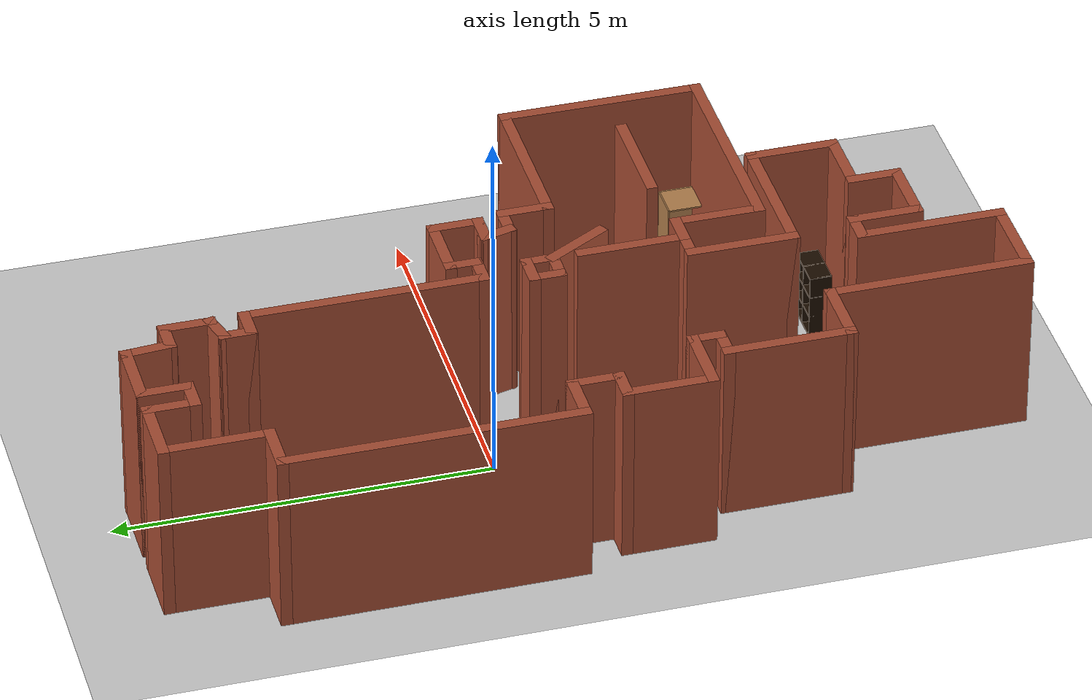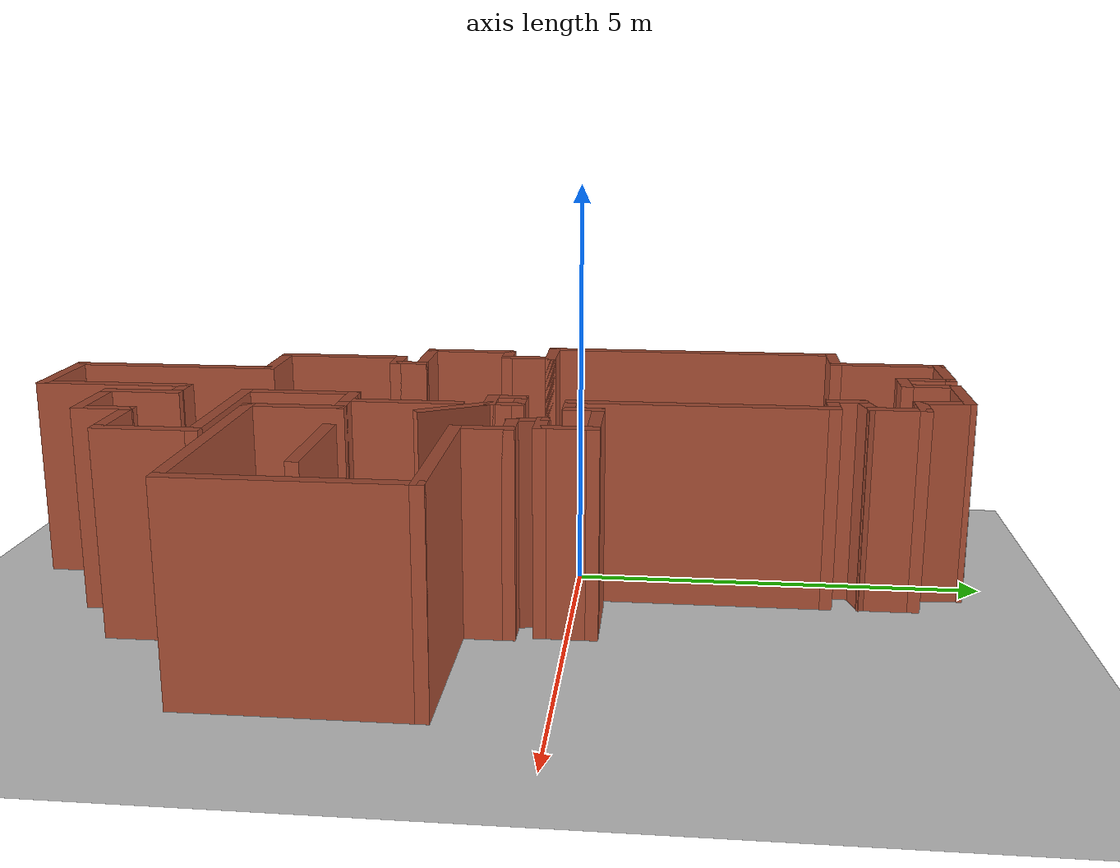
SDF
<sdf version="1.6">
 <world name="default">
  <light name="sun" type="directional">
   <pose>0 0 10 0 -0 0</pose>
   <diffuse>0.8 0.8 0.8 1</diffuse>
   <specular>0.2 0.2 0.2 1</specular>
   <attenuation>
    <range>1000</range>
    <constant>0.9</constant>
    <linear>0.01</linear>
    <quadratic>0.001</quadratic>
   </attenuation>
   <direction>-0.5 0.1 -0.9</direction>
  </light>
  <model name="ground_plane">
   <static>1</static>
   <link name="link">
    <collision name="collision">
     <geometry><plane><normal>0 0 1</normal><size>100 100</size></plane></geometry>
     <surface>
      <contact><collide_bitmask>65535</collide_bitmask></contact>
      <friction><ode><mu>100</mu><mu2>50</mu2></ode></friction>
     </surface>
    </collision>
    <visual name="visual">
     <cast_shadows>0</cast_shadows>
     <geometry><plane><normal>0 0 1</normal><size>100 100</size></plane></geometry>
     <material>
      <script><uri>file://media/materials/scripts/gazebo.material</uri><name>Gazebo/Grey</name></script>
     </material>
    </visual>
   </link>
  </model>
  <gravity>0 0 -9.8</gravity>
  <magnetic_field>6e-06 2.3e-05 -4.2e-05</magnetic_field>
  <atmosphere type="adiabatic"/>
  <physics name="default_physics" default="0" type="ode">
   <max_step_size>0.001</max_step_size>
   <real_time_factor>1</real_time_factor>
   <real_time_update_rate>1000</real_time_update_rate>
  </physics>
  <scene><ambient>0.4 0.4 0.4 1</ambient><background>0.7 0.7 0.7 1</background><shadows>1</shadows></scene>
  <audio><device>default</device></audio>
  <spherical_coordinates>
   <surface_model>EARTH_WGS84</surface_model>
   <latitude_deg>0</latitude_deg>
   <longitude_deg>0</longitude_deg>
   <elevation>0</elevation>
   <heading_deg>0</heading_deg>
  </spherical_coordinates>
  <model name="map_40">
   <pose>0.889419 -1.07501 0 0 -0 0</pose>
   <link name="Wall_0">
    <collision name="Wall_0_Collision">
     <geometry><box><size>1 0.15 2.5</size></box></geometry>
     <pose>0 0 1.25 0 -0 0</pose>
    </collision>
    <visual name="Wall_0_Visual">
     <pose>0 0 1.25 0 -0 0</pose>
     <geometry><box><size>1 0.15 2.5</size></box></geometry>
     <material>
      <script><uri>file://media/materials/scripts/gazebo.material</uri><name>Gazebo/Bricks</name></script>
      <ambient>1 1 1 1</ambient>
     </material>
     <meta><layer>0</layer></meta>
    </visual>
    <pose>-1 5.72202 0 0 -0 3.14159</pose>
   </link>
   <link name="Wall_10">
    <collision name="Wall_10_Collision">
     <geometry><box><size>1 0.15 2.5</size></box></geometry>
     <pose>0 0 1.25 0 -0 0</pose>
    </collision>
    <visual name="Wall_10_Visual">
     <pose>0 0 1.25 0 -0 0</pose>
     <geometry><box><size>1 0.15 2.5</size></box></geometry>
     <material>
      <script><uri>file://media/materials/scripts/gazebo.material</uri><name>Gazebo/Bricks</name></script>
      <ambient>1 1 1 1</ambient>
     </material>
     <meta><layer>0</layer></meta>
    </visual>
    <pose>-2.2 5.72202 0 0 -0 3.14159</pose>
   </link>
   <link name="Wall_11">
    <collision name="Wall_11_Collision">
     <geometry><box><size>1.5 0.15 2.5</size></box></geometry>
     <pose>0 0 1.25 0 -0 0</pose>
    </collision>
    <visual name="Wall_11_Visual">
     <pose>0 0 1.25 0 -0 0</pose>
     <geometry><box><size>1.5 0.15 2.5</size></box></geometry>
     <material>
      <script><uri>file://media/materials/scripts/gazebo.material</uri><name>Gazebo/Bricks</name></script>
      <ambient>1 1 1 1</ambient>
     </material>
     <meta><layer>0</layer></meta>
    </visual>
    <pose>-2.625 5.04702 0 0 -0 -1.5708</pose>
   </link>
   <link name="Wall_12">
    <collision name="Wall_12_Collision">
     <geometry><box><size>0.75 0.15 2.5</size></box></geometry>
     <pose>0 0 1.25 0 -0 0</pose>
    </collision>
    <visual name="Wall_12_Visual">
     <pose>0 0 1.25 0 -0 0</pose>
     <geometry><box><size>0.75 0.15 2.5</size></box></geometry>
     <material>
      <script><uri>file://media/materials/scripts/gazebo.material</uri><name>Gazebo/Bricks</name></script>
      <ambient>1 1 1 1</ambient>
     </material>
     <meta><layer>0</layer></meta>
    </visual>
    <pose>-2.925 4.37202 0 0 -0 3.14159</pose>
   </link>
   <link name="Wall_13">
    <collision name="Wall_13_Collision">
     <geometry><box><size>4 0.15 2.5</size></box></geometry>
     <pose>0 0 1.25 0 -0 0</pose>
    </collision>
    <visual name="Wall_13_Visual">
     <pose>0 0 1.25 0 -0 0</pose>
     <geometry><box><size>4 0.15 2.5</size></box></geometry>
     <material>
      <script><uri>file://media/materials/scripts/gazebo.material</uri><name>Gazebo/Bricks</name></script>
      <ambient>1 1 1 1</ambient>
     </material>
     <meta><layer>0</layer></meta>
    </visual>
    <pose>-3.225 2.44702 0 0 -0 -1.5708</pose>
   </link>
   <link name="Wall_16">
    <collision name="Wall_16_Collision">
     <geometry><box><size>0.75 0.15 2.5</size></box></geometry>
     <pose>0 0 1.25 0 -0 0</pose>
    </collision>
    <visual name="Wall_16_Visual">
     <pose>0 0 1.25 0 -0 0</pose>
     <geometry><box><size>0.75 0.15 2.5</size></box></geometry>
     <material>
      <script><uri>file://media/materials/scripts/gazebo.material</uri><name>Gazebo/Bricks</name></script>
      <ambient>1 1 1 1</ambient>
     </material>
     <meta><layer>0</layer></meta>
    </visual>
    <pose>-2.925 0.522023 0 0 -0 0</pose>
   </link>
   <link name="Wall_17">
    <collision name="Wall_17_Collision">
     <geometry><box><size>0.75 0.15 2.5</size></box></geometry>
     <pose>0 0 1.25 0 -0 0</pose>
    </collision>
    <visual name="Wall_17_Visual">
     <pose>0 0 1.25 0 -0 0</pose>
     <geometry><box><size>0.75 0.15 2.5</size></box></geometry>
     <material>
      <script><uri>file://media/materials/scripts/gazebo.material</uri><name>Gazebo/Bricks</name></script>
      <ambient>1 1 1 1</ambient>
     </material>
     <meta><layer>0</layer></meta>
    </visual>
    <pose>-2.625 0.222023 0 0 -0 -1.5708</pose>
   </link>
   <link name="Wall_18">
    <collision name="Wall_18_Collision">
     <geometry><box><size>0.5 0.15 2.5</size></box></geometry>
     <pose>0 0 1.25 0 -0 0</pose>
    </collision>
    <visual name="Wall_18_Visual">
     <pose>0 0 1.25 0 -0 0</pose>
     <geometry><box><size>0.5 0.15 2.5</size></box></geometry>
     <material>
      <script><uri>file://media/materials/scripts/gazebo.material</uri><name>Gazebo/Bricks</name></script>
      <ambient>1 1 1 1</ambient>
     </material>
     <meta><layer>0</layer></meta>
    </visual>
    <pose>-2.8 -0.077977 0 0 -0 3.14159</pose>
   </link>
   <link name="Wall_19">
    <collision name="Wall_19_Collision">
     <geometry><box><size>1.25 0.15 2.5</size></box></geometry>
     <pose>0 0 1.25 0 -0 0</pose>
    </collision>
    <visual name="Wall_19_Visual">
     <pose>0 0 1.25 0 -0 0</pose>
     <geometry><box><size>1.25 0.15 2.5</size></box></geometry>
     <material>
      <script><uri>file://media/materials/scripts/gazebo.material</uri><name>Gazebo/Bricks</name></script>
      <ambient>1 1 1 1</ambient>
     </material>
     <meta><layer>0</layer></meta>
    </visual>
    <pose>-2.975 -0.627977 0 0 -0 -1.5708</pose>
   </link>
   <link name="Wall_20">
    <collision name="Wall_20_Collision">
     <geometry><box><size>1 0.15 2.5</size></box></geometry>
     <pose>0 0 1.25 0 -0 0</pose>
    </collision>
    <visual name="Wall_20_Visual">
     <pose>0 0 1.25 0 -0 0</pose>
     <geometry><box><size>1 0.15 2.5</size></box></geometry>
     <material>
      <script><uri>file://media/materials/scripts/gazebo.material</uri><name>Gazebo/Bricks</name></script>
      <ambient>1 1 1 1</ambient>
     </material>
     <meta><layer>0</layer></meta>
    </visual>
    <pose>-2.55 -1.17798 0 0 -0 0</pose>
   </link>
   <link name="Wall_21">
    <collision name="Wall_21_Collision">
     <geometry><box><size>0.5 0.15 2.5</size></box></geometry>
     <pose>0 0 1.25 0 -0 0</pose>
    </collision>
    <visual name="Wall_21_Visual">
     <pose>0 0 1.25 0 -0 0</pose>
     <geometry><box><size>0.5 0.15 2.5</size></box></geometry>
     <material>
      <script><uri>file://media/materials/scripts/gazebo.material</uri><name>Gazebo/Bricks</name></script>
      <ambient>1 1 1 1</ambient>
     </material>
     <meta><layer>0</layer></meta>
    </visual>
    <pose>-2.125 -1.35298 0 0 -0 -1.5708</pose>
   </link>
   <link name="Wall_22">
    <collision name="Wall_22_Collision">
     <geometry><box><size>0.5 0.15 2.5</size></box></geometry>
     <pose>0 0 1.25 0 -0 0</pose>
    </collision>
    <visual name="Wall_22_Visual">
     <pose>0 0 1.25 0 -0 0</pose>
     <geometry><box><size>0.5 0.15 2.5</size></box></geometry>
     <material>
      <script><uri>file://media/materials/scripts/gazebo.material</uri><name>Gazebo/Bricks</name></script>
      <ambient>1 1 1 1</ambient>
     </material>
     <meta><layer>0</layer></meta>
    </visual>
    <pose>-2.3 -1.52798 0 0 -0 3.14159</pose>
   </link>
   <link name="Wall_23">
    <collision name="Wall_23_Collision">
     <geometry><box><size>1.75 0.15 2.5</size></box></geometry>
     <pose>0 0 1.25 0 -0 0</pose>
    </collision>
    <visual name="Wall_23_Visual">
     <pose>0 0 1.25 0 -0 0</pose>
     <geometry><box><size>1.75 0.15 2.5</size></box></geometry>
     <material>
      <script><uri>file://media/materials/scripts/gazebo.material</uri><name>Gazebo/Bricks</name></script>
      <ambient>1 1 1 1</ambient>
     </material>
     <meta><layer>0</layer></meta>
    </visual>
    <pose>-2.475 -2.32798 0 0 -0 -1.5708</pose>
   </link>
   <link name="Wall_24">
    <collision name="Wall_24_Collision">
     <geometry><box><size>1 0.15 2.5</size></box></geometry>
     <pose>0 0 1.25 0 -0 0</pose>
    </collision>
    <visual name="Wall_24_Visual">
     <pose>0 0 1.25 0 -0 0</pose>
     <geometry><box><size>1 0.15 2.5</size></box></geometry>
     <material>
      <script><uri>file://media/materials/scripts/gazebo.material</uri><name>Gazebo/Bricks</name></script>
      <ambient>1 1 1 1</ambient>
     </material>
     <meta><layer>0</layer></meta>
    </visual>
    <pose>-2.05 -3.12798 0 0 -0 0</pose>
   </link>
   <link name="Wall_25">
    <collision name="Wall_25_Collision">
     <geometry><box><size>2.75 0.15 2.5</size></box></geometry>
     <pose>0 0 1.25 0 -0 0</pose>
    </collision>
    <visual name="Wall_25_Visual">
     <pose>0 0 1.25 0 -0 0</pose>
     <geometry><box><size>2.75 0.15 2.5</size></box></geometry>
     <material>
      <script><uri>file://media/materials/scripts/gazebo.material</uri><name>Gazebo/Bricks</name></script>
      <ambient>1 1 1 1</ambient>
     </material>
     <meta><layer>0</layer></meta>
    </visual>
    <pose>-1.625 -4.42798 0 0 -0 -1.5708</pose>
   </link>
   <link name="Wall_26">
    <collision name="Wall_26_Collision">
     <geometry><box><size>1.25 0.15 2.5</size></box></geometry>
     <pose>0 0 1.25 0 -0 0</pose>
    </collision>
    <visual name="Wall_26_Visual">
     <pose>0 0 1.25 0 -0 0</pose>
     <geometry><box><size>1.25 0.15 2.5</size></box></geometry>
     <material>
      <script><uri>file://media/materials/scripts/gazebo.material</uri><name>Gazebo/Bricks</name></script>
      <ambient>1 1 1 1</ambient>
     </material>
     <meta><layer>0</layer></meta>
    </visual>
    <pose>-1.075 -5.72798 0 0 -0 0</pose>
   </link>
   <link name="Wall_27">
    <collision name="Wall_27_Collision">
     <geometry><box><size>2 0.15 2.5</size></box></geometry>
     <pose>0 0 1.25 0 -0 0</pose>
    </collision>
    <visual name="Wall_27_Visual">
     <pose>0 0 1.25 0 -0 0</pose>
     <geometry><box><size>2 0.15 2.5</size></box></geometry>
     <material>
      <script><uri>file://media/materials/scripts/gazebo.material</uri><name>Gazebo/Bricks</name></script>
      <ambient>1 1 1 1</ambient>
     </material>
     <meta><layer>0</layer></meta>
    </visual>
    <pose>-0.525 -4.80298 0 0 -0 1.5708</pose>
   </link>
   <link name="Wall_28">
    <collision name="Wall_28_Collision">
     <geometry><box><size>0.5 0.15 2.5</size></box></geometry>
     <pose>0 0 1.25 0 -0 0</pose>
    </collision>
    <visual name="Wall_28_Visual">
     <pose>0 0 1.25 0 -0 0</pose>
     <geometry><box><size>0.5 0.15 2.5</size></box></geometry>
     <material>
      <script><uri>file://media/materials/scripts/gazebo.material</uri><name>Gazebo/Bricks</name></script>
      <ambient>1 1 1 1</ambient>
     </material>
     <meta><layer>0</layer></meta>
    </visual>
    <pose>-0.35 -3.87798 0 0 -0 0</pose>
   </link>
   <link name="Wall_29">
    <collision name="Wall_29_Collision">
     <geometry><box><size>1 0.15 2.5</size></box></geometry>
     <pose>0 0 1.25 0 -0 0</pose>
    </collision>
    <visual name="Wall_29_Visual">
     <pose>0 0 1.25 0 -0 0</pose>
     <geometry><box><size>1 0.15 2.5</size></box></geometry>
     <material>
      <script><uri>file://media/materials/scripts/gazebo.material</uri><name>Gazebo/Bricks</name></script>
      <ambient>1 1 1 1</ambient>
     </material>
     <meta><layer>0</layer></meta>
    </visual>
    <pose>-0.175 -4.30298 0 0 -0 -1.5708</pose>
   </link>
   <link name="Wall_3">
    <collision name="Wall_3_Collision">
     <geometry><box><size>0.75 0.15 2.5</size></box></geometry>
     <pose>0 0 1.25 0 -0 0</pose>
    </collision>
    <visual name="Wall_3_Visual">
     <pose>0 0 1.25 0 -0 0</pose>
     <geometry><box><size>0.75 0.15 2.5</size></box></geometry>
     <material>
      <script><uri>file://media/materials/scripts/gazebo.material</uri><name>Gazebo/Bricks</name></script>
      <ambient>1 1 1 1</ambient>
     </material>
     <meta><layer>0</layer></meta>
    </visual>
    <pose>-1.425 5.42202 0 0 -0 -1.5708</pose>
   </link>
   <link name="Wall_30">
    <collision name="Wall_30_Collision">
     <geometry><box><size>1 0.15 2.5</size></box></geometry>
     <pose>0 0 1.25 0 -0 0</pose>
    </collision>
    <visual name="Wall_30_Visual">
     <pose>0 0 1.25 0 -0 0</pose>
     <geometry><box><size>1 0.15 2.5</size></box></geometry>
     <material>
      <script><uri>file://media/materials/scripts/gazebo.material</uri><name>Gazebo/Bricks</name></script>
      <ambient>1 1 1 1</ambient>
     </material>
     <meta><layer>0</layer></meta>
    </visual>
    <pose>0.25 -4.72798 0 0 -0 0</pose>
   </link>
   <link name="Wall_31">
    <collision name="Wall_31_Collision">
     <geometry><box><size>0.75 0.15 2.5</size></box></geometry>
     <pose>0 0 1.25 0 -0 0</pose>
    </collision>
    <visual name="Wall_31_Visual">
     <pose>0 0 1.25 0 -0 0</pose>
     <geometry><box><size>0.75 0.15 2.5</size></box></geometry>
     <material>
      <script><uri>file://media/materials/scripts/gazebo.material</uri><name>Gazebo/Bricks</name></script>
      <ambient>1 1 1 1</ambient>
     </material>
     <meta><layer>0</layer></meta>
    </visual>
    <pose>0.675 -4.42798 0 0 -0 1.5708</pose>
   </link>
   <link name="Wall_32">
    <collision name="Wall_32_Collision">
     <geometry><box><size>1 0.15 2.5</size></box></geometry>
     <pose>0 0 1.25 0 -0 0</pose>
    </collision>
    <visual name="Wall_32_Visual">
     <pose>0 0 1.25 0 -0 0</pose>
     <geometry><box><size>1 0.15 2.5</size></box></geometry>
     <material>
      <script><uri>file://media/materials/scripts/gazebo.material</uri><name>Gazebo/Bricks</name></script>
      <ambient>1 1 1 1</ambient>
     </material>
     <meta><layer>0</layer></meta>
    </visual>
    <pose>1.1 -4.12798 0 0 -0 0</pose>
   </link>
   <link name="Wall_33">
    <collision name="Wall_33_Collision">
     <geometry><box><size>1.25 0.15 2.5</size></box></geometry>
     <pose>0 0 1.25 0 -0 0</pose>
    </collision>
    <visual name="Wall_33_Visual">
     <pose>0 0 1.25 0 -0 0</pose>
     <geometry><box><size>1.25 0.15 2.5</size></box></geometry>
     <material>
      <script><uri>file://media/materials/scripts/gazebo.material</uri><name>Gazebo/Bricks</name></script>
      <ambient>1 1 1 1</ambient>
     </material>
     <meta><layer>0</layer></meta>
    </visual>
    <pose>1.525 -3.57798 0 0 -0 1.5708</pose>
   </link>
   <link name="Wall_34">
    <collision name="Wall_34_Collision">
     <geometry><box><size>2 0.15 2.5</size></box></geometry>
     <pose>0 0 1.25 0 -0 0</pose>
    </collision>
    <visual name="Wall_34_Visual">
     <pose>0 0 1.25 0 -0 0</pose>
     <geometry><box><size>2 0.15 2.5</size></box></geometry>
     <material>
      <script><uri>file://media/materials/scripts/gazebo.material</uri><name>Gazebo/Bricks</name></script>
      <ambient>1 1 1 1</ambient>
     </material>
     <meta><layer>0</layer></meta>
    </visual>
    <pose>0.6 -3.02798 0 0 -0 3.14159</pose>
   </link>
   <link name="Wall_35">
    <collision name="Wall_35_Collision">
     <geometry><box><size>1.5 0.15 2.5</size></box></geometry>
     <pose>0 0 1.25 0 -0 0</pose>
    </collision>
    <visual name="Wall_35_Visual">
     <pose>0 0 1.25 0 -0 0</pose>
     <geometry><box><size>1.5 0.15 2.5</size></box></geometry>
     <material>
      <script><uri>file://media/materials/scripts/gazebo.material</uri><name>Gazebo/Bricks</name></script>
      <ambient>1 1 1 1</ambient>
     </material>
     <meta><layer>0</layer></meta>
    </visual>
    <pose>-0.325 -2.35298 0 0 -0 1.5708</pose>
   </link>
   <link name="Wall_36">
    <collision name="Wall_36_Collision">
     <geometry><box><size>0.5 0.15 2.5</size></box></geometry>
     <pose>0 0 1.25 0 -0 0</pose>
    </collision>
    <visual name="Wall_36_Visual">
     <pose>0 0 1.25 0 -0 0</pose>
     <geometry><box><size>0.5 0.15 2.5</size></box></geometry>
     <material>
      <script><uri>file://media/materials/scripts/gazebo.material</uri><name>Gazebo/Bricks</name></script>
      <ambient>1 1 1 1</ambient>
     </material>
     <meta><layer>0</layer></meta>
    </visual>
    <pose>-0.15 -1.67798 0 0 -0 0</pose>
   </link>
   <link name="Wall_37">
    <collision name="Wall_37_Collision">
     <geometry><box><size>1.5 0.15 2.5</size></box></geometry>
     <pose>0 0 1.25 0 -0 0</pose>
    </collision>
    <visual name="Wall_37_Visual">
     <pose>0 0 1.25 0 -0 0</pose>
     <geometry><box><size>1.5 0.15 2.5</size></box></geometry>
     <material>
      <script><uri>file://media/materials/scripts/gazebo.material</uri><name>Gazebo/Bricks</name></script>
      <ambient>1 1 1 1</ambient>
     </material>
     <meta><layer>0</layer></meta>
    </visual>
    <pose>0.025 -1.00298 0 0 -0 1.5708</pose>
   </link>
   <link name="Wall_39">
    <collision name="Wall_39_Collision">
     <geometry><box><size>0.5 0.15 2.5</size></box></geometry>
     <pose>0 0 1.25 0 -0 0</pose>
    </collision>
    <visual name="Wall_39_Visual">
     <pose>0 0 1.25 0 -0 0</pose>
     <geometry><box><size>0.5 0.15 2.5</size></box></geometry>
     <material>
      <script><uri>file://media/materials/scripts/gazebo.material</uri><name>Gazebo/Bricks</name></script>
      <ambient>1 1 1 1</ambient>
     </material>
     <meta><layer>0</layer></meta>
    </visual>
    <pose>0.2 -1.67798 0 0 -0 0</pose>
   </link>
   <link name="Wall_4">
    <collision name="Wall_4_Collision">
     <geometry><box><size>0.5 0.15 2.5</size></box></geometry>
     <pose>0 0 1.25 0 -0 0</pose>
    </collision>
    <visual name="Wall_4_Visual">
     <pose>0 0 1.25 0 -0 0</pose>
     <geometry><box><size>0.5 0.15 2.5</size></box></geometry>
     <material>
      <script><uri>file://media/materials/scripts/gazebo.material</uri><name>Gazebo/Bricks</name></script>
      <ambient>1 1 1 1</ambient>
     </material>
     <meta><layer>0</layer></meta>
    </visual>
    <pose>-1.6 5.12202 0 0 -0 3.14159</pose>
   </link>
   <link name="Wall_42">
    <collision name="Wall_42_Collision">
     <geometry><box><size>1.25 0.15 2.5</size></box></geometry>
     <pose>0 0 1.25 0 -0 0</pose>
    </collision>
    <visual name="Wall_42_Visual">
     <pose>0 0 1.25 0 -0 0</pose>
     <geometry><box><size>1.25 0.15 2.5</size></box></geometry>
     <material>
      <script><uri>file://media/materials/scripts/gazebo.material</uri><name>Gazebo/Bricks</name></script>
      <ambient>1 1 1 1</ambient>
     </material>
     <meta><layer>0</layer></meta>
    </visual>
    <pose>0.375 -2.22798 0 0 -0 -1.5708</pose>
   </link>
   <link name="Wall_43">
    <collision name="Wall_43_Collision">
     <geometry><box><size>3 0.15 2.5</size></box></geometry>
     <pose>0 0 1.25 0 -0 0</pose>
    </collision>
    <visual name="Wall_43_Visual">
     <pose>0 0 1.25 0 -0 0</pose>
     <geometry><box><size>3 0.15 2.5</size></box></geometry>
     <material>
      <script><uri>file://media/materials/scripts/gazebo.material</uri><name>Gazebo/Bricks</name></script>
      <ambient>1 1 1 1</ambient>
     </material>
     <meta><layer>0</layer></meta>
    </visual>
    <pose>1.8 -2.77798 0 0 -0 0</pose>
   </link>
   <link name="Wall_44">
    <collision name="Wall_44_Collision">
     <geometry><box><size>2.75 0.15 2.5</size></box></geometry>
     <pose>0 0 1.25 0 -0 0</pose>
    </collision>
    <visual name="Wall_44_Visual">
     <pose>0 0 1.25 0 -0 0</pose>
     <geometry><box><size>2.75 0.15 2.5</size></box></geometry>
     <material>
      <script><uri>file://media/materials/scripts/gazebo.material</uri><name>Gazebo/Bricks</name></script>
      <ambient>1 1 1 1</ambient>
     </material>
     <meta><layer>0</layer></meta>
    </visual>
    <pose>3.225 -1.47798 0 0 -0 1.5708</pose>
   </link>
   <link name="Wall_49">
    <collision name="Wall_49_Collision">
     <geometry><box><size>2.25 0.15 2.5</size></box></geometry>
     <pose>0 0 1.25 0 -0 0</pose>
    </collision>
    <visual name="Wall_49_Visual">
     <pose>0 0 1.25 0 -0 0</pose>
     <geometry><box><size>2.25 0.15 2.5</size></box></geometry>
     <material>
      <script><uri>file://media/materials/scripts/gazebo.material</uri><name>Gazebo/Bricks</name></script>
      <ambient>1 1 1 1</ambient>
     </material>
     <meta><layer>0</layer></meta>
    </visual>
    <pose>2.175 -0.177977 0 0 -0 3.14159</pose>
   </link>
   <link name="Wall_50">
    <collision name="Wall_50_Collision">
     <geometry><box><size>0.75 0.15 2.5</size></box></geometry>
     <pose>0 0 1.25 0 -0 0</pose>
    </collision>
    <visual name="Wall_50_Visual">
     <pose>0 0 1.25 0 -0 0</pose>
     <geometry><box><size>0.75 0.15 2.5</size></box></geometry>
     <material>
      <script><uri>file://media/materials/scripts/gazebo.material</uri><name>Gazebo/Bricks</name></script>
      <ambient>1 1 1 1</ambient>
     </material>
     <meta><layer>0</layer></meta>
    </visual>
    <pose>1.125 0.122023 0 0 -0 1.5708</pose>
   </link>
   <link name="Wall_51">
    <collision name="Wall_51_Collision">
     <geometry><box><size>0.5 0.15 2.5</size></box></geometry>
     <pose>0 0 1.25 0 -0 0</pose>
    </collision>
    <visual name="Wall_51_Visual">
     <pose>0 0 1.25 0 -0 0</pose>
     <geometry><box><size>0.5 0.15 2.5</size></box></geometry>
     <material>
      <script><uri>file://media/materials/scripts/gazebo.material</uri><name>Gazebo/Bricks</name></script>
      <ambient>1 1 1 1</ambient>
     </material>
     <meta><layer>0</layer></meta>
    </visual>
    <pose>0.95 0.422023 0 0 -0 3.14159</pose>
   </link>
   <link name="Wall_52">
    <collision name="Wall_52_Collision">
     <geometry><box><size>0.5 0.15 2.5</size></box></geometry>
     <pose>0 0 1.25 0 -0 0</pose>
    </collision>
    <visual name="Wall_52_Visual">
     <pose>0 0 1.25 0 -0 0</pose>
     <geometry><box><size>0.5 0.15 2.5</size></box></geometry>
     <material>
      <script><uri>file://media/materials/scripts/gazebo.material</uri><name>Gazebo/Bricks</name></script>
      <ambient>1 1 1 1</ambient>
     </material>
     <meta><layer>0</layer></meta>
    </visual>
    <pose>0.729707 0.59106 0 0 -0 1.8326</pose>
   </link>
   <link name="Wall_53">
    <collision name="Wall_53_Collision">
     <geometry><box><size>0.5 0.15 2.5</size></box></geometry>
     <pose>0 0 1.25 0 -0 0</pose>
    </collision>
    <visual name="Wall_53_Visual">
     <pose>0 0 1.25 0 -0 0</pose>
     <geometry><box><size>0.5 0.15 2.5</size></box></geometry>
     <material>
      <script><uri>file://media/materials/scripts/gazebo.material</uri><name>Gazebo/Bricks</name></script>
      <ambient>1 1 1 1</ambient>
     </material>
     <meta><layer>0</layer></meta>
    </visual>
    <pose>0.859413 0.760097 0 0 -0 0</pose>
   </link>
   <link name="Wall_56">
    <collision name="Wall_56_Collision">
     <geometry><box><size>0.75 0.15 2.5</size></box></geometry>
     <pose>0 0 1.25 0 -0 0</pose>
    </collision>
    <visual name="Wall_56_Visual">
     <pose>0 0 1.25 0 -0 0</pose>
     <geometry><box><size>0.75 0.15 2.5</size></box></geometry>
     <material>
      <script><uri>file://media/materials/scripts/gazebo.material</uri><name>Gazebo/Bricks</name></script>
      <ambient>1 1 1 1</ambient>
     </material>
     <meta><layer>0</layer></meta>
    </visual>
    <pose>1.03441 1.0601 0 0 -0 1.5708</pose>
   </link>
   <link name="Wall_57">
    <collision name="Wall_57_Collision">
     <geometry><box><size>1 0.15 2.5</size></box></geometry>
     <pose>0 0 1.25 0 -0 0</pose>
    </collision>
    <visual name="Wall_57_Visual">
     <pose>0 0 1.25 0 -0 0</pose>
     <geometry><box><size>1 0.15 2.5</size></box></geometry>
     <material>
      <script><uri>file://media/materials/scripts/gazebo.material</uri><name>Gazebo/Bricks</name></script>
      <ambient>1 1 1 1</ambient>
     </material>
     <meta><layer>0</layer></meta>
    </visual>
    <pose>0.609413 1.3601 0 0 -0 3.14159</pose>
   </link>
   <link name="Wall_58">
    <collision name="Wall_58_Collision">
     <geometry><box><size>0.5 0.15 2.5</size></box></geometry>
     <pose>0 0 1.25 0 -0 0</pose>
    </collision>
    <visual name="Wall_58_Visual">
     <pose>0 0 1.25 0 -0 0</pose>
     <geometry><box><size>0.5 0.15 2.5</size></box></geometry>
     <material>
      <script><uri>file://media/materials/scripts/gazebo.material</uri><name>Gazebo/Bricks</name></script>
      <ambient>1 1 1 1</ambient>
     </material>
     <meta><layer>0</layer></meta>
    </visual>
    <pose>0.184413 1.1851 0 0 -0 -1.5708</pose>
   </link>
   <link name="Wall_59">
    <collision name="Wall_59_Collision">
     <geometry><box><size>0.5 0.15 2.5</size></box></geometry>
     <pose>0 0 1.25 0 -0 0</pose>
    </collision>
    <visual name="Wall_59_Visual">
     <pose>0 0 1.25 0 -0 0</pose>
     <geometry><box><size>0.5 0.15 2.5</size></box></geometry>
     <material>
      <script><uri>file://media/materials/scripts/gazebo.material</uri><name>Gazebo/Bricks</name></script>
      <ambient>1 1 1 1</ambient>
     </material>
     <meta><layer>0</layer></meta>
    </visual>
    <pose>0.009413 1.0101 0 0 -0 3.14159</pose>
   </link>
   <link name="Wall_60">
    <collision name="Wall_60_Collision">
     <geometry><box><size>3.25 0.15 2.5</size></box></geometry>
     <pose>0 0 1.25 0 -0 0</pose>
    </collision>
    <visual name="Wall_60_Visual">
     <pose>0 0 1.25 0 -0 0</pose>
     <geometry><box><size>3.25 0.15 2.5</size></box></geometry>
     <material>
      <script><uri>file://media/materials/scripts/gazebo.material</uri><name>Gazebo/Bricks</name></script>
      <ambient>1 1 1 1</ambient>
     </material>
     <meta><layer>0</layer></meta>
    </visual>
    <pose>-0.165587 2.5601 0 0 -0 1.5708</pose>
   </link>
   <link name="Wall_61">
    <collision name="Wall_61_Collision">
     <geometry><box><size>0.5 0.15 2.5</size></box></geometry>
     <pose>0 0 1.25 0 -0 0</pose>
    </collision>
    <visual name="Wall_61_Visual">
     <pose>0 0 1.25 0 -0 0</pose>
     <geometry><box><size>0.5 0.15 2.5</size></box></geometry>
     <material>
      <script><uri>file://media/materials/scripts/gazebo.material</uri><name>Gazebo/Bricks</name></script>
      <ambient>1 1 1 1</ambient>
     </material>
     <meta><layer>0</layer></meta>
    </visual>
    <pose>-0.340587 4.1101 0 0 -0 3.14159</pose>
   </link>
   <link name="Wall_62">
    <collision name="Wall_62_Collision">
     <geometry><box><size>0.5 0.15 2.5</size></box></geometry>
     <pose>0 0 1.25 0 -0 0</pose>
    </collision>
    <visual name="Wall_62_Visual">
     <pose>0 0 1.25 0 -0 0</pose>
     <geometry><box><size>0.5 0.15 2.5</size></box></geometry>
     <material>
      <script><uri>file://media/materials/scripts/gazebo.material</uri><name>Gazebo/Bricks</name></script>
      <ambient>1 1 1 1</ambient>
     </material>
     <meta><layer>0</layer></meta>
    </visual>
    <pose>-0.515587 4.2851 0 0 -0 1.5708</pose>
   </link>
   <link name="Wall_63">
    <collision name="Wall_63_Collision">
     <geometry><box><size>0.5 0.15 2.5</size></box></geometry>
     <pose>0 0 1.25 0 -0 0</pose>
    </collision>
    <visual name="Wall_63_Visual">
     <pose>0 0 1.25 0 -0 0</pose>
     <geometry><box><size>0.5 0.15 2.5</size></box></geometry>
     <material>
      <script><uri>file://media/materials/scripts/gazebo.material</uri><name>Gazebo/Bricks</name></script>
      <ambient>1 1 1 1</ambient>
     </material>
     <meta><layer>0</layer></meta>
    </visual>
    <pose>-0.34655 4.50539 0 0 -0 0.261799</pose>
   </link>
   <link name="Wall_64">
    <collision name="Wall_64_Collision">
     <geometry><box><size>0.75 0.15 2.5</size></box></geometry>
     <pose>0 0 1.25 0 -0 0</pose>
    </collision>
    <visual name="Wall_64_Visual">
     <pose>0 0 1.25 0 -0 0</pose>
     <geometry><box><size>0.75 0.15 2.5</size></box></geometry>
     <material>
      <script><uri>file://media/materials/scripts/gazebo.material</uri><name>Gazebo/Bricks</name></script>
      <ambient>1 1 1 1</ambient>
     </material>
     <meta><layer>0</layer></meta>
    </visual>
    <pose>-0.177513 4.85068 0 0 -0 1.5708</pose>
   </link>
   <link name="Wall_65">
    <collision name="Wall_65_Collision">
     <geometry><box><size>0.5 0.15 2.5</size></box></geometry>
     <pose>0 0 1.25 0 -0 0</pose>
    </collision>
    <visual name="Wall_65_Visual">
     <pose>0 0 1.25 0 -0 0</pose>
     <geometry><box><size>0.5 0.15 2.5</size></box></geometry>
     <material>
      <script><uri>file://media/materials/scripts/gazebo.material</uri><name>Gazebo/Bricks</name></script>
      <ambient>1 1 1 1</ambient>
     </material>
     <meta><layer>0</layer></meta>
    </visual>
    <pose>-0.352513 5.15068 0 0 -0 3.14159</pose>
   </link>
   <link name="Wall_66">
    <collision name="Wall_66_Collision">
     <geometry><box><size>0.723309 0.15 2.5</size></box></geometry>
     <pose>0 0 1.25 0 -0 0</pose>
    </collision>
    <visual name="Wall_66_Visual">
     <pose>0 0 1.25 0 -0 0</pose>
     <geometry><box><size>0.723309 0.15 2.5</size></box></geometry>
     <material>
      <script><uri>file://media/materials/scripts/gazebo.material</uri><name>Gazebo/Bricks</name></script>
      <ambient>1 1 1 1</ambient>
     </material>
     <meta><layer>0</layer></meta>
    </visual>
    <pose>-0.551256 5.43635 0 0 -0 1.65372</pose>
   </link>
   <link name="Wall_7">
    <collision name="Wall_7_Collision">
     <geometry><box><size>0.75 0.15 2.5</size></box></geometry>
     <pose>0 0 1.25 0 -0 0</pose>
    </collision>
    <visual name="Wall_7_Visual">
     <pose>0 0 1.25 0 -0 0</pose>
     <geometry><box><size>0.75 0.15 2.5</size></box></geometry>
     <material>
      <script><uri>file://media/materials/scripts/gazebo.material</uri><name>Gazebo/Bricks</name></script>
      <ambient>1 1 1 1</ambient>
     </material>
     <meta><layer>0</layer></meta>
    </visual>
    <pose>-1.775 5.42202 0 0 -0 1.5708</pose>
   </link>
   <link name="Wall_74">
    <collision name="Wall_74_Collision">
     <geometry><box><size>1.5 0.15 2.5</size></box></geometry>
     <pose>0 0 1.25 0 -0 0</pose>
    </collision>
    <visual name="Wall_74_Visual">
     <pose>0 0 1.25 0 -0 0</pose>
     <geometry><box><size>1.5 0.15 2.5</size></box></geometry>
     <material>
      <script><uri>file://media/materials/scripts/gazebo.material</uri><name>Gazebo/Bricks</name></script>
      <ambient>1 1 1 1</ambient>
     </material>
     <meta><layer>0</layer></meta>
    </visual>
    <pose>1.90482 -1.58904 0 0 -0 0</pose>
   </link>
   <link name="Wall_76">
    <collision name="Wall_76_Collision">
     <geometry><box><size>0.5 0.15 2.5</size></box></geometry>
     <pose>0 0 1.25 0 -0 0</pose>
    </collision>
    <visual name="Wall_76_Visual">
     <pose>0 0 1.25 0 -0 0</pose>
     <geometry><box><size>0.5 0.15 2.5</size></box></geometry>
     <material>
      <script><uri>file://media/materials/scripts/gazebo.material</uri><name>Gazebo/Bricks</name></script>
      <ambient>1 1 1 1</ambient>
     </material>
     <meta><layer>0</layer></meta>
    </visual>
    <pose>-0.330278 0.224323 0 0 -0 -1.5708</pose>
   </link>
   <link name="Wall_77">
    <collision name="Wall_77_Collision">
     <geometry><box><size>0.5 0.15 2.5</size></box></geometry>
     <pose>0 0 1.25 0 -0 0</pose>
    </collision>
    <visual name="Wall_77_Visual">
     <pose>0 0 1.25 0 -0 0</pose>
     <geometry><box><size>0.5 0.15 2.5</size></box></geometry>
     <material>
      <script><uri>file://media/materials/scripts/gazebo.material</uri><name>Gazebo/Bricks</name></script>
      <ambient>1 1 1 1</ambient>
     </material>
     <meta><layer>0</layer></meta>
    </visual>
    <pose>-0.155278 0.049323 0 0 -0 0</pose>
   </link>
   <link name="Wall_78">
    <collision name="Wall_78_Collision">
     <geometry><box><size>0.5 0.15 2.5</size></box></geometry>
     <pose>0 0 1.25 0 -0 0</pose>
    </collision>
    <visual name="Wall_78_Visual">
     <pose>0 0 1.25 0 -0 0</pose>
     <geometry><box><size>0.5 0.15 2.5</size></box></geometry>
     <material>
      <script><uri>file://media/materials/scripts/gazebo.material</uri><name>Gazebo/Bricks</name></script>
      <ambient>1 1 1 1</ambient>
     </material>
     <meta><layer>0</layer></meta>
    </visual>
    <pose>0.019722 0.224323 0 0 -0 1.5708</pose>
   </link>
   <link name="Wall_79">
    <collision name="Wall_79_Collision">
     <geometry><box><size>0.5 0.15 2.5</size></box></geometry>
     <pose>0 0 1.25 0 -0 0</pose>
    </collision>
    <visual name="Wall_79_Visual">
     <pose>0 0 1.25 0 -0 0</pose>
     <geometry><box><size>0.5 0.15 2.5</size></box></geometry>
     <material>
      <script><uri>file://media/materials/scripts/gazebo.material</uri><name>Gazebo/Bricks</name></script>
      <ambient>1 1 1 1</ambient>
     </material>
     <meta><layer>0</layer></meta>
    </visual>
    <pose>-0.155278 0.399323 0 0 -0 3.14159</pose>
   </link>
   <link name="Wall_81">
    <collision name="Wall_81_Collision">
     <geometry><box><size>1 0.15 2.5</size></box></geometry>
     <pose>0 0 1.25 0 -0 0</pose>
    </collision>
    <visual name="Wall_81_Visual">
     <pose>0 0 1.25 0 -0 0</pose>
     <geometry><box><size>1 0.15 2.5</size></box></geometry>
     <material>
      <script><uri>file://media/materials/scripts/gazebo.material</uri><name>Gazebo/Bricks</name></script>
      <ambient>1 1 1 1</ambient>
     </material>
     <meta><layer>0</layer></meta>
    </visual>
    <pose>0.232222 -0.318738 0 0 -0 -1.0472</pose>
   </link>
   <static>1</static>
  </model>
  <model name="cabinet">
   <static>1</static>
   <link name="cabinet_bottom_plate">
    <inertial>
     <pose>0 0 -1 0 -0 0</pose>
     <inertia><ixx>2.05</ixx><ixy>0</ixy><ixz>0</ixz><iyy>2.05</iyy><iyz>0</iyz><izz>2.05</izz></inertia>
     <mass>25</mass>
    </inertial>
    <collision name="cabinet_bottom_plate_geom">
     <pose>0 0 0.01 0 -0 0</pose>
     <geometry><box><size>0.45 0.45 0.02</size></box></geometry>
    </collision>
    <visual name="cabinet_bottom_plate_geom_visual">
     <pose>0 0 0.01 0 -0 0</pose>
     <geometry><box><size>0.45 0.45 0.02</size></box></geometry>
     <material>
      <script><uri>file://media/materials/scripts/gazebo.material</uri><name>Gazebo/Wood</name></script>
     </material>
    </visual>
    <collision name="cabinet_bottom_plate_geom_cabinet_back_plate">
     <pose>0.235 0 0.51 0 -0 0</pose>
     <geometry><box><size>0.02 0.45 1.02</size></box></geometry>
    </collision>
    <visual name="cabinet_bottom_plate_geom_cabinet_back_plate_visual">
     <pose>0.235 0 0.51 0 -0 0</pose>
     <geometry><box><size>0.02 0.45 1.02</size></box></geometry>
     <material>
      <script><uri>file://media/materials/scripts/gazebo.material</uri><name>Gazebo/Wood</name></script>
     </material>
    </visual>
    <collision name="cabinet_bottom_plate_geom_cabinet_left_plate">
     <pose>0 0.235 0.51 0 -0 0</pose>
     <geometry><box><size>0.45 0.02 1.02</size></box></geometry>
    </collision>
    <visual name="cabinet_bottom_plate_geom_cabinet_left_plate_visual">
     <pose>0 0.235 0.51 0 -0 0</pose>
     <geometry><box><size>0.45 0.02 1.02</size></box></geometry>
     <material>
      <script><uri>file://media/materials/scripts/gazebo.material</uri><name>Gazebo/Wood</name></script>
     </material>
    </visual>
    <collision name="cabinet_bottom_plate_geom_cabinet_middle_plate">
     <pose>0 0 0.51 0 -0 0</pose>
     <geometry><box><size>0.45 0.45 0.02</size></box></geometry>
    </collision>
    <visual name="cabinet_bottom_plate_geom_cabinet_middle_plate_visual">
     <pose>0 0 0.51 0 -0 0</pose>
     <geometry><box><size>0.45 0.45 0.02</size></box></geometry>
     <material>
      <script><uri>file://media/materials/scripts/gazebo.material</uri><name>Gazebo/Wood</name></script>
     </material>
    </visual>
    <collision name="cabinet_bottom_plate_geom_cabinet_right_plate">
     <pose>0 -0.235 0.51 0 -0 0</pose>
     <geometry><box><size>0.45 0.02 1.02</size></box></geometry>
    </collision>
    <visual name="cabinet_bottom_plate_geom_cabinet_right_plate_visual">
     <pose>0 -0.235 0.51 0 -0 0</pose>
     <geometry><box><size>0.45 0.02 1.02</size></box></geometry>
     <material>
      <script><uri>file://media/materials/scripts/gazebo.material</uri><name>Gazebo/Wood</name></script>
     </material>
    </visual>
    <collision name="cabinet_bottom_plate_geom_cabinet_top_plate">
     <pose>0 0 1.01 0 -0 0</pose>
     <geometry><box><size>0.45 0.45 0.02</size></box></geometry>
    </collision>
    <visual name="cabinet_bottom_plate_geom_cabinet_top_plate_visual">
     <pose>0 0 1.01 0 -0 0</pose>
     <geometry><box><size>0.45 0.45 0.02</size></box></geometry>
     <material>
      <script><uri>file://media/materials/scripts/gazebo.material</uri><name>Gazebo/Wood</name></script>
     </material>
    </visual>
   </link>
   <pose>3.73496 -3.55893 0 0 -0 0</pose>
  </model>
  <model name="cabinet_0">
   <static>1</static>
   <link name="cabinet_bottom_plate">
    <inertial>
     <pose>0 0 -1 0 -0 0</pose>
     <inertia><ixx>2.05</ixx><ixy>0</ixy><ixz>0</ixz><iyy>2.05</iyy><iyz>0</iyz><izz>2.05</izz></inertia>
     <mass>25</mass>
    </inertial>
    <collision name="cabinet_bottom_plate_geom">
     <pose>0 0 0.01 0 -0 0</pose>
     <geometry><box><size>0.45 0.45 0.02</size></box></geometry>
    </collision>
    <visual name="cabinet_bottom_plate_geom_visual">
     <pose>0 0 0.01 0 -0 0</pose>
     <geometry><box><size>0.45 0.45 0.02</size></box></geometry>
     <material>
      <script><uri>file://media/materials/scripts/gazebo.material</uri><name>Gazebo/Wood</name></script>
     </material>
    </visual>
    <collision name="cabinet_bottom_plate_geom_cabinet_back_plate">
     <pose>0.235 0 0.51 0 -0 0</pose>
     <geometry><box><size>0.02 0.45 1.02</size></box></geometry>
    </collision>
    <visual name="cabinet_bottom_plate_geom_cabinet_back_plate_visual">
     <pose>0.235 0 0.51 0 -0 0</pose>
     <geometry><box><size>0.02 0.45 1.02</size></box></geometry>
     <material>
      <script><uri>file://media/materials/scripts/gazebo.material</uri><name>Gazebo/Wood</name></script>
     </material>
    </visual>
    <collision name="cabinet_bottom_plate_geom_cabinet_left_plate">
     <pose>0 0.235 0.51 0 -0 0</pose>
     <geometry><box><size>0.45 0.02 1.02</size></box></geometry>
    </collision>
    <visual name="cabinet_bottom_plate_geom_cabinet_left_plate_visual">
     <pose>0 0.235 0.51 0 -0 0</pose>
     <geometry><box><size>0.45 0.02 1.02</size></box></geometry>
     <material>
      <script><uri>file://media/materials/scripts/gazebo.material</uri><name>Gazebo/Wood</name></script>
     </material>
    </visual>
    <collision name="cabinet_bottom_plate_geom_cabinet_middle_plate">
     <pose>0 0 0.51 0 -0 0</pose>
     <geometry><box><size>0.45 0.45 0.02</size></box></geometry>
    </collision>
    <visual name="cabinet_bottom_plate_geom_cabinet_middle_plate_visual">
     <pose>0 0 0.51 0 -0 0</pose>
     <geometry><box><size>0.45 0.45 0.02</size></box></geometry>
     <material>
      <script><uri>file://media/materials/scripts/gazebo.material</uri><name>Gazebo/Wood</name></script>
     </material>
    </visual>
    <collision name="cabinet_bottom_plate_geom_cabinet_right_plate">
     <pose>0 -0.235 0.51 0 -0 0</pose>
     <geometry><box><size>0.45 0.02 1.02</size></box></geometry>
    </collision>
    <visual name="cabinet_bottom_plate_geom_cabinet_right_plate_visual">
     <pose>0 -0.235 0.51 0 -0 0</pose>
     <geometry><box><size>0.45 0.02 1.02</size></box></geometry>
     <material>
      <script><uri>file://media/materials/scripts/gazebo.material</uri><name>Gazebo/Wood</name></script>
     </material>
    </visual>
    <collision name="cabinet_bottom_plate_geom_cabinet_top_plate">
     <pose>0 0 1.01 0 -0 0</pose>
     <geometry><box><size>0.45 0.45 0.02</size></box></geometry>
    </collision>
    <visual name="cabinet_bottom_plate_geom_cabinet_top_plate_visual">
     <pose>0 0 1.01 0 -0 0</pose>
     <geometry><box><size>0.45 0.45 0.02</size></box></geometry>
     <material>
      <script><uri>file://media/materials/scripts/gazebo.material</uri><name>Gazebo/Wood</name></script>
     </material>
    </visual>
   </link>
   <pose>1.62258 -3.47035 0 0 -0 0</pose>
  </model>
  <model name="6_Cube_StorageE">
   <link name="Wall_0">
    <pose>0 0 0.01 0 -0 0</pose>
    <inertial>
     <mass>1.6201</mass>
     <inertia><ixx>0.0119</ixx><iyy>0.0631</iyy><izz>0.0513</izz><ixy>0</ixy><ixz>0</ixz><iyz>0</iyz></inertia>
    </inertial>
    <collision name="Wall_0_Collision"><geometry><box><size>0.616 0.296 0.02</size></box></geometry></collision>
    <visual name="Wall_0_Visual">
     <geometry><box><size>0.616 0.296 0.02</size></box></geometry>
     <material>
      <script><uri>file://media/materials/scripts/gazebo.material</uri><name>Gazebo/Grey</name></script>
      <ambient>0.105882 0.0509804 0 1</ambient>
     </material>
    </visual>
   </link>
   <joint name="0_2" type="fixed">
    <pose>-0.308 0 0 0 -0 0</pose>
    <parent>Wall_2</parent>
    <child>Wall_0</child>
    <axis>
     <xyz>1 0 0</xyz>
     <use_parent_model_frame>0</use_parent_model_frame>
     <limit><lower>-1e+16</lower><upper>1e+16</upper></limit>
    </axis>
   </joint>
   <joint name="0_12" type="fixed">
    <parent>Wall_12</parent>
    <child>Wall_0</child>
    <axis>
     <xyz>0 0 1</xyz>
     <use_parent_model_frame>0</use_parent_model_frame>
     <limit><lower>-1e+16</lower><upper>1e+16</upper></limit>
    </axis>
   </joint>
   <joint name="0_4" type="fixed">
    <pose>0.308 0 0 0 -0 0</pose>
    <parent>Wall_4</parent>
    <child>Wall_0</child>
    <axis>
     <xyz>1 0 0</xyz>
     <use_parent_model_frame>0</use_parent_model_frame>
     <limit><lower>-1e+16</lower><upper>1e+16</upper></limit>
    </axis>
   </joint>
   <link name="Wall_10">
    <pose>0 0 0.61 0 -0 0</pose>
    <inertial>
     <mass>1.6201</mass>
     <inertia><ixx>0.0119</ixx><iyy>0.0631</iyy><izz>0.0513</izz><ixy>0</ixy><ixz>0</ixz><iyz>0</iyz></inertia>
    </inertial>
    <collision name="Wall_10_Collision"><geometry><box><size>0.616 0.296 0.02</size></box></geometry></collision>
    <visual name="Wall_10_Visual">
     <geometry><box><size>0.616 0.296 0.02</size></box></geometry>
     <material>
      <script><uri>file://media/materials/scripts/gazebo.material</uri><name>Gazebo/Grey</name></script>
      <ambient>0.105882 0.0509804 0 1</ambient>
     </material>
    </visual>
   </link>
   <joint name="10_2" type="fixed">
    <pose>-0.308 0 0 0 -0 0</pose>
    <parent>Wall_2</parent>
    <child>Wall_10</child>
    <axis>
     <xyz>1 0 0</xyz>
     <use_parent_model_frame>0</use_parent_model_frame>
     <limit><lower>-1e+16</lower><upper>1e+16</upper></limit>
    </axis>
   </joint>
   <joint name="10_12" type="fixed">
    <parent>Wall_12</parent>
    <child>Wall_10</child>
    <axis>
     <xyz>0 0 1</xyz>
     <use_parent_model_frame>0</use_parent_model_frame>
     <limit><lower>-1e+16</lower><upper>1e+16</upper></limit>
    </axis>
   </joint>
   <joint name="10_4" type="fixed">
    <pose>0.308 0 0 0 -0 0</pose>
    <parent>Wall_4</parent>
    <child>Wall_10</child>
    <axis>
     <xyz>1 0 0</xyz>
     <use_parent_model_frame>0</use_parent_model_frame>
     <limit><lower>-1e+16</lower><upper>1e+16</upper></limit>
    </axis>
   </joint>
   <link name="Wall_12">
    <pose>0 0 0.4575 0 -0 0</pose>
    <inertial>
     <mass>2.4065</mass>
     <inertia><ixx>0.0177</ixx><iyy>0.1855</iyy><izz>0.168</izz><ixy>0</ixy><ixz>0</ixz><iyz>0</iyz></inertia>
    </inertial>
    <collision name="Wall_12_Collision"><geometry><box><size>0.02 0.296 0.915</size></box></geometry></collision>
    <visual name="Wall_12_Visual">
     <geometry><box><size>0.02 0.296 0.915</size></box></geometry>
     <material>
      <script><uri>file://media/materials/scripts/gazebo.material</uri><name>Gazebo/Grey</name></script>
      <ambient>0.105882 0.0509804 0 1</ambient>
     </material>
    </visual>
   </link>
   <link name="Wall_2">
    <pose>-0.298 0 0.4575 0 -0 0</pose>
    <inertial>
     <mass>2.4065</mass>
     <inertia><ixx>0.0177</ixx><iyy>0.1855</iyy><izz>0.168</izz><ixy>0</ixy><ixz>0</ixz><iyz>0</iyz></inertia>
    </inertial>
    <collision name="Wall_2_Collision"><geometry><box><size>0.02 0.296 0.915</size></box></geometry></collision>
    <visual name="Wall_2_Visual">
     <geometry><box><size>0.02 0.296 0.915</size></box></geometry>
     <material>
      <script><uri>file://media/materials/scripts/gazebo.material</uri><name>Gazebo/Grey</name></script>
      <ambient>0.105882 0.0509804 0 1</ambient>
     </material>
    </visual>
   </link>
   <link name="Wall_4">
    <pose>0.298 0 0.4575 0 -0 0</pose>
    <inertial>
     <mass>2.4065</mass>
     <inertia><ixx>0.0177</ixx><iyy>0.1855</iyy><izz>0.168</izz><ixy>0</ixy><ixz>0</ixz><iyz>0</iyz></inertia>
    </inertial>
    <collision name="Wall_4_Collision"><geometry><box><size>0.02 0.296 0.915</size></box></geometry></collision>
    <visual name="Wall_4_Visual">
     <geometry><box><size>0.02 0.296 0.915</size></box></geometry>
     <material>
      <script><uri>file://media/materials/scripts/gazebo.material</uri><name>Gazebo/Grey</name></script>
      <ambient>0.105882 0.0509804 0 1</ambient>
     </material>
    </visual>
   </link>
   <link name="Wall_6">
    <pose>0 0 0.905 0 -0 0</pose>
    <inertial>
     <mass>1.6201</mass>
     <inertia><ixx>0.0119</ixx><iyy>0.0631</iyy><izz>0.0513</izz><ixy>0</ixy><ixz>0</ixz><iyz>0</iyz></inertia>
    </inertial>
    <collision name="Wall_6_Collision"><geometry><box><size>0.616 0.296 0.02</size></box></geometry></collision>
    <visual name="Wall_6_Visual">
     <geometry><box><size>0.616 0.296 0.02</size></box></geometry>
     <material>
      <script><uri>file://media/materials/scripts/gazebo.material</uri><name>Gazebo/Grey</name></script>
      <ambient>0.105882 0.0509804 0 1</ambient>
     </material>
    </visual>
   </link>
   <joint name="6_2" type="fixed">
    <pose>-0.308 0 0 0 -0 0</pose>
    <parent>Wall_2</parent>
    <child>Wall_6</child>
    <axis>
     <xyz>2 0 0</xyz>
     <use_parent_model_frame>0</use_parent_model_frame>
     <limit><lower>-1e+16</lower><upper>1e+16</upper></limit>
    </axis>
   </joint>
   <joint name="6_12" type="fixed">
    <parent>Wall_12</parent>
    <child>Wall_6</child>
    <axis>
     <xyz>0 0 1</xyz>
     <use_parent_model_frame>0</use_parent_model_frame>
     <limit><lower>-1e+16</lower><upper>1e+16</upper></limit>
    </axis>
   </joint>
   <joint name="6_4" type="fixed">
    <pose>0.308 0 0 0 -0 0</pose>
    <parent>Wall_4</parent>
    <child>Wall_6</child>
    <axis>
     <xyz>1 0 0</xyz>
     <use_parent_model_frame>0</use_parent_model_frame>
     <limit><lower>-1e+16</lower><upper>1e+16</upper></limit>
    </axis>
   </joint>
   <link name="Wall_8">
    <pose>0 0 0.305 0 -0 0</pose>
    <inertial>
     <mass>1.6201</mass>
     <inertia><ixx>0.0119</ixx><iyy>0.0631</iyy><izz>0.0513</izz><ixy>0</ixy><ixz>0</ixz><iyz>0</iyz></inertia>
    </inertial>
    <collision name="Wall_8_Collision"><geometry><box><size>0.616 0.296 0.02</size></box></geometry></collision>
    <visual name="Wall_8_Visual">
     <geometry><box><size>0.616 0.296 0.02</size></box></geometry>
     <material>
      <script><uri>file://media/materials/scripts/gazebo.material</uri><name>Gazebo/Grey</name></script>
      <ambient>0.105882 0.0509804 0 1</ambient>
     </material>
    </visual>
   </link>
   <joint name="8_2" type="fixed">
    <pose>-0.308 0 0 0 -0 0</pose>
    <parent>Wall_2</parent>
    <child>Wall_8</child>
    <axis>
     <xyz>1 0 0</xyz>
     <use_parent_model_frame>0</use_parent_model_frame>
     <limit><lower>-1e+16</lower><upper>1e+16</upper></limit>
    </axis>
   </joint>
   <joint name="8_12" type="fixed">
    <parent>Wall_12</parent>
    <child>Wall_8</child>
    <axis>
     <xyz>0 0 1</xyz>
     <use_parent_model_frame>0</use_parent_model_frame>
     <limit><lower>-1e+16</lower><upper>1e+16</upper></limit>
    </axis>
   </joint>
   <joint name="8_4" type="fixed">
    <pose>0.308 0 0 0 -0 0</pose>
    <parent>Wall_4</parent>
    <child>Wall_8</child>
    <axis>
     <xyz>1 0 0</xyz>
     <use_parent_model_frame>0</use_parent_model_frame>
     <limit><lower>-1e+16</lower><upper>1e+16</upper></limit>
    </axis>
   </joint>
   <static>1</static>
   <pose>1.98784 -4.86078 0 0 -0 0</pose>
  </model>
 </world>
</sdf>
